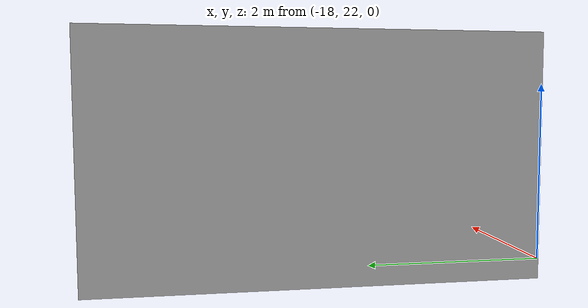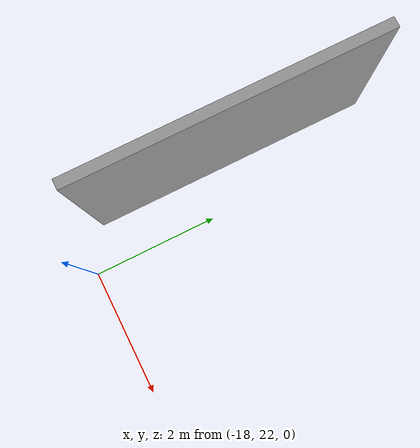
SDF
<?xml version='1.0'?>
<sdf version='1.6'>
  <model name='add11'>
    <pose frame=''>-18.746 24.654 0 0 -0 0</pose>
    <link name='Wall_11'>
      <collision name='Wall_11_Collision'>
        <geometry>
          <box>
            <size>4.5 0.15 2.5</size>
          </box>
        </geometry>
        <pose frame=''>0 0 1.25 0 -0 0</pose>
      </collision>
      <visual name='Wall_11_Visual'>
        <pose frame=''>0 0 1.25 0 -0 0</pose>
        <geometry>
          <box>
            <size>4.5 0.15 2.5</size>
          </box>
        </geometry>
        <material>
          <script>
            <uri>file://media/materials/scripts/gazebo.material</uri>
            <name>Gazebo/Grey</name>
          </script>
          <ambient>1 1 1 1</ambient>
        </material>
        <meta>
          <layer>0</layer>
        </meta>
      </visual>
      <pose frame=''>0 0 0 0 -0 -1.5708</pose>
    </link>
    <static>1</static>
  </model>
</sdf>
